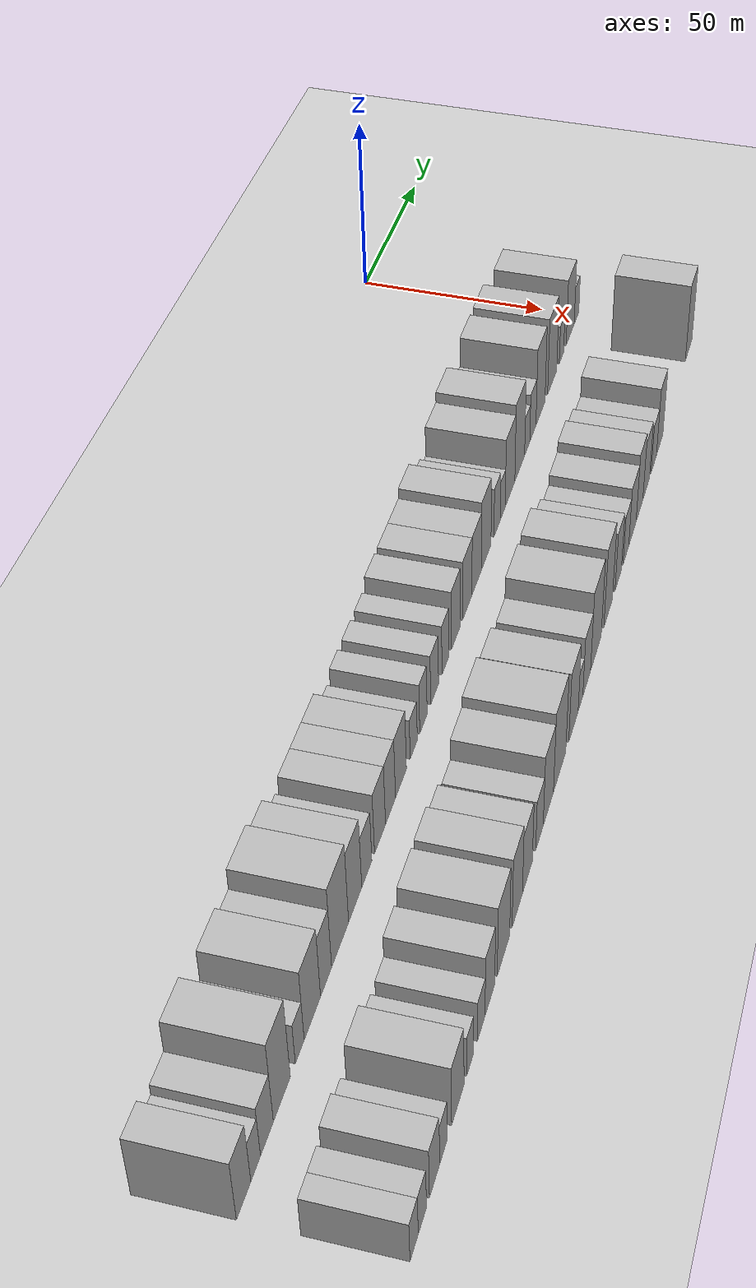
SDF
<sdf version="1.6">
 <world name="default">
  <include><name>ground_plane_1</name><uri>model://HANNAS_ground_plane</uri></include>
  <model name="building_1">
   <static>1</static>
   <pose>50.0000 -278.0419 0 0.000000 0.000000 0.000000</pose>
   <link name="link">
    <pose>0 0 9.00 0 0 0</pose>
    <collision name="collision"><geometry><box><size>20.0000 7.9161 18.0000</size></box></geometry></collision>
    <visual name="visual">
     <cast_shadows>0</cast_shadows>
     <geometry><box><size>20.0000 7.9161 18.0000</size></box></geometry>
     <material>
      <script>
       <uri>model://HANNAS_wall/materials/scripts</uri>
       <uri>model://HANNAS_wall/materials/textures</uri>
       <name>vrc/HANNAS_wall</name>
      </script>
     </material>
    </visual>
   </link>
  </model>
  <model name="building_2">
   <static>1</static>
   <pose>50.0000 -271.3548 0 0.000000 0.000000 0.000000</pose>
   <link name="link">
    <pose>0 0 6.00 0 0 0</pose>
    <collision name="collision"><geometry><box><size>20.0000 5.4581 12.0000</size></box></geometry></collision>
    <visual name="visual">
     <cast_shadows>0</cast_shadows>
     <geometry><box><size>20.0000 5.4581 12.0000</size></box></geometry>
     <material>
      <script>
       <uri>model://HANNAS_wall/materials/scripts</uri>
       <uri>model://HANNAS_wall/materials/textures</uri>
       <name>vrc/HANNAS_wall</name>
      </script>
     </material>
    </visual>
   </link>
  </model>
  <model name="building_3">
   <static>1</static>
   <pose>50.0000 -264.9347 0 0.000000 0.000000 0.000000</pose>
   <link name="link">
    <pose>0 0 7.50 0 0 0</pose>
    <collision name="collision"><geometry><box><size>20.0000 7.3822 15.0000</size></box></geometry></collision>
    <visual name="visual">
     <cast_shadows>0</cast_shadows>
     <geometry><box><size>20.0000 7.3822 15.0000</size></box></geometry>
     <material>
      <script>
       <uri>model://HANNAS_wall/materials/scripts</uri>
       <uri>model://HANNAS_wall/materials/textures</uri>
       <name>vrc/HANNAS_wall</name>
      </script>
     </material>
    </visual>
   </link>
  </model>
  <model name="building_4">
   <static>1</static>
   <pose>50.0000 -256.2046 0 0.000000 0.000000 0.000000</pose>
   <link name="link">
    <pose>0 0 12.00 0 0 0</pose>
    <collision name="collision"><geometry><box><size>20.0000 10.0779 24.0000</size></box></geometry></collision>
    <visual name="visual">
     <cast_shadows>0</cast_shadows>
     <geometry><box><size>20.0000 10.0779 24.0000</size></box></geometry>
     <material>
      <script>
       <uri>model://HANNAS_wall/materials/scripts</uri>
       <uri>model://HANNAS_wall/materials/textures</uri>
       <name>vrc/HANNAS_wall</name>
      </script>
     </material>
    </visual>
   </link>
  </model>
  <model name="building_5">
   <static>1</static>
   <pose>50.0000 -245.4248 0 0.000000 0.000000 0.000000</pose>
   <link name="link">
    <pose>0 0 6.00 0 0 0</pose>
    <collision name="collision"><geometry><box><size>20.0000 5.4817 12.0000</size></box></geometry></collision>
    <visual name="visual">
     <cast_shadows>0</cast_shadows>
     <geometry><box><size>20.0000 5.4817 12.0000</size></box></geometry>
     <material>
      <script>
       <uri>model://HANNAS_wall/materials/scripts</uri>
       <uri>model://HANNAS_wall/materials/textures</uri>
       <name>vrc/HANNAS_wall</name>
      </script>
     </material>
    </visual>
   </link>
  </model>
  <model name="building_6">
   <static>1</static>
   <pose>50.0000 -237.4997 0 0.000000 0.000000 0.000000</pose>
   <link name="link">
    <pose>0 0 10.50 0 0 0</pose>
    <collision name="collision"><geometry><box><size>20.0000 10.3685 21.0000</size></box></geometry></collision>
    <visual name="visual">
     <cast_shadows>0</cast_shadows>
     <geometry><box><size>20.0000 10.3685 21.0000</size></box></geometry>
     <material>
      <script>
       <uri>model://HANNAS_wall/materials/scripts</uri>
       <uri>model://HANNAS_wall/materials/textures</uri>
       <name>vrc/HANNAS_wall</name>
      </script>
     </material>
    </visual>
   </link>
  </model>
  <model name="building_7">
   <static>1</static>
   <pose>50.0000 -228.6989 0 0.000000 0.000000 0.000000</pose>
   <link name="link">
    <pose>0 0 9.00 0 0 0</pose>
    <collision name="collision"><geometry><box><size>20.0000 7.2332 18.0000</size></box></geometry></collision>
    <visual name="visual">
     <cast_shadows>0</cast_shadows>
     <geometry><box><size>20.0000 7.2332 18.0000</size></box></geometry>
     <material>
      <script>
       <uri>model://HANNAS_wall/materials/scripts</uri>
       <uri>model://HANNAS_wall/materials/textures</uri>
       <name>vrc/HANNAS_wall</name>
      </script>
     </material>
    </visual>
   </link>
  </model>
  <model name="building_8">
   <static>1</static>
   <pose>50.0000 -219.3549 0 0.000000 0.000000 0.000000</pose>
   <link name="link">
    <pose>0 0 12.00 0 0 0</pose>
    <collision name="collision"><geometry><box><size>20.0000 11.4548 24.0000</size></box></geometry></collision>
    <visual name="visual">
     <cast_shadows>0</cast_shadows>
     <geometry><box><size>20.0000 11.4548 24.0000</size></box></geometry>
     <material>
      <script>
       <uri>model://HANNAS_wall/materials/scripts</uri>
       <uri>model://HANNAS_wall/materials/textures</uri>
       <name>vrc/HANNAS_wall</name>
      </script>
     </material>
    </visual>
   </link>
  </model>
  <model name="building_9">
   <static>1</static>
   <pose>50.0000 -209.0306 0 0.000000 0.000000 0.000000</pose>
   <link name="link">
    <pose>0 0 10.50 0 0 0</pose>
    <collision name="collision"><geometry><box><size>20.0000 9.1938 21.0000</size></box></geometry></collision>
    <visual name="visual">
     <cast_shadows>0</cast_shadows>
     <geometry><box><size>20.0000 9.1938 21.0000</size></box></geometry>
     <material>
      <script>
       <uri>model://HANNAS_wall/materials/scripts</uri>
       <uri>model://HANNAS_wall/materials/textures</uri>
       <name>vrc/HANNAS_wall</name>
      </script>
     </material>
    </visual>
   </link>
  </model>
  <model name="building_10">
   <static>1</static>
   <pose>50.0000 -200.8286 0 0.000000 0.000000 0.000000</pose>
   <link name="link">
    <pose>0 0 7.50 0 0 0</pose>
    <collision name="collision"><geometry><box><size>20.0000 7.2102 15.0000</size></box></geometry></collision>
    <visual name="visual">
     <cast_shadows>0</cast_shadows>
     <geometry><box><size>20.0000 7.2102 15.0000</size></box></geometry>
     <material>
      <script>
       <uri>model://HANNAS_wall/materials/scripts</uri>
       <uri>model://HANNAS_wall/materials/textures</uri>
       <name>vrc/HANNAS_wall</name>
      </script>
     </material>
    </visual>
   </link>
  </model>
  <model name="building_11">
   <static>1</static>
   <pose>50.0000 -191.1680 0 0.000000 0.000000 0.000000</pose>
   <link name="link">
    <pose>0 0 9.00 0 0 0</pose>
    <collision name="collision"><geometry><box><size>20.0000 8.1109 18.0000</size></box></geometry></collision>
    <visual name="visual">
     <cast_shadows>0</cast_shadows>
     <geometry><box><size>20.0000 8.1109 18.0000</size></box></geometry>
     <material>
      <script>
       <uri>model://HANNAS_wall/materials/scripts</uri>
       <uri>model://HANNAS_wall/materials/textures</uri>
       <name>vrc/HANNAS_wall</name>
      </script>
     </material>
    </visual>
   </link>
  </model>
  <model name="building_12">
   <static>1</static>
   <pose>50.0000 -183.3251 0 0.000000 0.000000 0.000000</pose>
   <link name="link">
    <pose>0 0 9.00 0 0 0</pose>
    <collision name="collision"><geometry><box><size>20.0000 7.5751 18.0000</size></box></geometry></collision>
    <visual name="visual">
     <cast_shadows>0</cast_shadows>
     <geometry><box><size>20.0000 7.5751 18.0000</size></box></geometry>
     <material>
      <script>
       <uri>model://HANNAS_wall/materials/scripts</uri>
       <uri>model://HANNAS_wall/materials/textures</uri>
       <name>vrc/HANNAS_wall</name>
      </script>
     </material>
    </visual>
   </link>
  </model>
  <model name="building_13">
   <static>1</static>
   <pose>50.0000 -175.3021 0 0.000000 0.000000 0.000000</pose>
   <link name="link">
    <pose>0 0 9.00 0 0 0</pose>
    <collision name="collision"><geometry><box><size>20.0000 8.4709 18.0000</size></box></geometry></collision>
    <visual name="visual">
     <cast_shadows>0</cast_shadows>
     <geometry><box><size>20.0000 8.4709 18.0000</size></box></geometry>
     <material>
      <script>
       <uri>model://HANNAS_wall/materials/scripts</uri>
       <uri>model://HANNAS_wall/materials/textures</uri>
       <name>vrc/HANNAS_wall</name>
      </script>
     </material>
    </visual>
   </link>
  </model>
  <model name="building_14">
   <static>1</static>
   <pose>50.0000 -165.2082 0 0.000000 0.000000 0.000000</pose>
   <link name="link">
    <pose>0 0 6.00 0 0 0</pose>
    <collision name="collision"><geometry><box><size>20.0000 5.7168 12.0000</size></box></geometry></collision>
    <visual name="visual">
     <cast_shadows>0</cast_shadows>
     <geometry><box><size>20.0000 5.7168 12.0000</size></box></geometry>
     <material>
      <script>
       <uri>model://HANNAS_wall/materials/scripts</uri>
       <uri>model://HANNAS_wall/materials/textures</uri>
       <name>vrc/HANNAS_wall</name>
      </script>
     </material>
    </visual>
   </link>
  </model>
  <model name="building_15">
   <static>1</static>
   <pose>50.0000 -157.3259 0 0.000000 0.000000 0.000000</pose>
   <link name="link">
    <pose>0 0 7.50 0 0 0</pose>
    <collision name="collision"><geometry><box><size>20.0000 6.0478 15.0000</size></box></geometry></collision>
    <visual name="visual">
     <cast_shadows>0</cast_shadows>
     <geometry><box><size>20.0000 6.0478 15.0000</size></box></geometry>
     <material>
      <script>
       <uri>model://HANNAS_wall/materials/scripts</uri>
       <uri>model://HANNAS_wall/materials/textures</uri>
       <name>vrc/HANNAS_wall</name>
      </script>
     </material>
    </visual>
   </link>
  </model>
  <model name="building_16">
   <static>1</static>
   <pose>50.0000 -148.0049 0 0.000000 0.000000 0.000000</pose>
   <link name="link">
    <pose>0 0 7.50 0 0 0</pose>
    <collision name="collision"><geometry><box><size>20.0000 6.5941 15.0000</size></box></geometry></collision>
    <visual name="visual">
     <cast_shadows>0</cast_shadows>
     <geometry><box><size>20.0000 6.5941 15.0000</size></box></geometry>
     <material>
      <script>
       <uri>model://HANNAS_wall/materials/scripts</uri>
       <uri>model://HANNAS_wall/materials/textures</uri>
       <name>vrc/HANNAS_wall</name>
      </script>
     </material>
    </visual>
   </link>
  </model>
  <model name="building_17">
   <static>1</static>
   <pose>50.0000 -138.6632 0 0.000000 0.000000 0.000000</pose>
   <link name="link">
    <pose>0 0 7.50 0 0 0</pose>
    <collision name="collision"><geometry><box><size>20.0000 6.0894 15.0000</size></box></geometry></collision>
    <visual name="visual">
     <cast_shadows>0</cast_shadows>
     <geometry><box><size>20.0000 6.0894 15.0000</size></box></geometry>
     <material>
      <script>
       <uri>model://HANNAS_wall/materials/scripts</uri>
       <uri>model://HANNAS_wall/materials/textures</uri>
       <name>vrc/HANNAS_wall</name>
      </script>
     </material>
    </visual>
   </link>
  </model>
  <model name="building_18">
   <static>1</static>
   <pose>50.0000 -129.5498 0 0.000000 0.000000 0.000000</pose>
   <link name="link">
    <pose>0 0 9.00 0 0 0</pose>
    <collision name="collision"><geometry><box><size>20.0000 8.1373 18.0000</size></box></geometry></collision>
    <visual name="visual">
     <cast_shadows>0</cast_shadows>
     <geometry><box><size>20.0000 8.1373 18.0000</size></box></geometry>
     <material>
      <script>
       <uri>model://HANNAS_wall/materials/scripts</uri>
       <uri>model://HANNAS_wall/materials/textures</uri>
       <name>vrc/HANNAS_wall</name>
      </script>
     </material>
    </visual>
   </link>
  </model>
  <model name="building_19">
   <static>1</static>
   <pose>50.0000 -119.1275 0 0.000000 0.000000 0.000000</pose>
   <link name="link">
    <pose>0 0 9.00 0 0 0</pose>
    <collision name="collision"><geometry><box><size>20.0000 8.7075 18.0000</size></box></geometry></collision>
    <visual name="visual">
     <cast_shadows>0</cast_shadows>
     <geometry><box><size>20.0000 8.7075 18.0000</size></box></geometry>
     <material>
      <script>
       <uri>model://HANNAS_wall/materials/scripts</uri>
       <uri>model://HANNAS_wall/materials/textures</uri>
       <name>vrc/HANNAS_wall</name>
      </script>
     </material>
    </visual>
   </link>
  </model>
  <model name="building_20">
   <static>1</static>
   <pose>50.0000 -110.3166 0 0.000000 0.000000 0.000000</pose>
   <link name="link">
    <pose>0 0 9.00 0 0 0</pose>
    <collision name="collision"><geometry><box><size>20.0000 8.9142 18.0000</size></box></geometry></collision>
    <visual name="visual">
     <cast_shadows>0</cast_shadows>
     <geometry><box><size>20.0000 8.9142 18.0000</size></box></geometry>
     <material>
      <script>
       <uri>model://HANNAS_wall/materials/scripts</uri>
       <uri>model://HANNAS_wall/materials/textures</uri>
       <name>vrc/HANNAS_wall</name>
      </script>
     </material>
    </visual>
   </link>
  </model>
  <model name="building_21">
   <static>1</static>
   <pose>50.0000 -101.2761 0 0.000000 0.000000 0.000000</pose>
   <link name="link">
    <pose>0 0 10.50 0 0 0</pose>
    <collision name="collision"><geometry><box><size>20.0000 9.1668 21.0000</size></box></geometry></collision>
    <visual name="visual">
     <cast_shadows>0</cast_shadows>
     <geometry><box><size>20.0000 9.1668 21.0000</size></box></geometry>
     <material>
      <script>
       <uri>model://HANNAS_wall/materials/scripts</uri>
       <uri>model://HANNAS_wall/materials/textures</uri>
       <name>vrc/HANNAS_wall</name>
      </script>
     </material>
    </visual>
   </link>
  </model>
  <model name="building_22">
   <static>1</static>
   <pose>50.0000 -90.5518 0 0.000000 0.000000 0.000000</pose>
   <link name="link">
    <pose>0 0 7.50 0 0 0</pose>
    <collision name="collision"><geometry><box><size>20.0000 6.2818 15.0000</size></box></geometry></collision>
    <visual name="visual">
     <cast_shadows>0</cast_shadows>
     <geometry><box><size>20.0000 6.2818 15.0000</size></box></geometry>
     <material>
      <script>
       <uri>model://HANNAS_wall/materials/scripts</uri>
       <uri>model://HANNAS_wall/materials/textures</uri>
       <name>vrc/HANNAS_wall</name>
      </script>
     </material>
    </visual>
   </link>
  </model>
  <model name="building_23">
   <static>1</static>
   <pose>50.0000 -84.8986 0 0.000000 0.000000 0.000000</pose>
   <link name="link">
    <pose>0 0 6.00 0 0 0</pose>
    <collision name="collision"><geometry><box><size>20.0000 5.0246 12.0000</size></box></geometry></collision>
    <visual name="visual">
     <cast_shadows>0</cast_shadows>
     <geometry><box><size>20.0000 5.0246 12.0000</size></box></geometry>
     <material>
      <script>
       <uri>model://HANNAS_wall/materials/scripts</uri>
       <uri>model://HANNAS_wall/materials/textures</uri>
       <name>vrc/HANNAS_wall</name>
      </script>
     </material>
    </visual>
   </link>
  </model>
  <model name="building_24">
   <static>1</static>
   <pose>50.0000 -77.4337 0 0.000000 0.000000 0.000000</pose>
   <link name="link">
    <pose>0 0 10.50 0 0 0</pose>
    <collision name="collision"><geometry><box><size>20.0000 9.9053 21.0000</size></box></geometry></collision>
    <visual name="visual">
     <cast_shadows>0</cast_shadows>
     <geometry><box><size>20.0000 9.9053 21.0000</size></box></geometry>
     <material>
      <script>
       <uri>model://HANNAS_wall/materials/scripts</uri>
       <uri>model://HANNAS_wall/materials/textures</uri>
       <name>vrc/HANNAS_wall</name>
      </script>
     </material>
    </visual>
   </link>
  </model>
  <model name="building_25">
   <static>1</static>
   <pose>50.0000 -67.3081 0 0.000000 0.000000 0.000000</pose>
   <link name="link">
    <pose>0 0 12.00 0 0 0</pose>
    <collision name="collision"><geometry><box><size>20.0000 10.3458 24.0000</size></box></geometry></collision>
    <visual name="visual">
     <cast_shadows>0</cast_shadows>
     <geometry><box><size>20.0000 10.3458 24.0000</size></box></geometry>
     <material>
      <script>
       <uri>model://HANNAS_wall/materials/scripts</uri>
       <uri>model://HANNAS_wall/materials/textures</uri>
       <name>vrc/HANNAS_wall</name>
      </script>
     </material>
    </visual>
   </link>
  </model>
  <model name="building_26">
   <static>1</static>
   <pose>50.0000 -59.3123 0 0.000000 0.000000 0.000000</pose>
   <link name="link">
    <pose>0 0 6.00 0 0 0</pose>
    <collision name="collision"><geometry><box><size>20.0000 5.6458 12.0000</size></box></geometry></collision>
    <visual name="visual">
     <cast_shadows>0</cast_shadows>
     <geometry><box><size>20.0000 5.6458 12.0000</size></box></geometry>
     <material>
      <script>
       <uri>model://HANNAS_wall/materials/scripts</uri>
       <uri>model://HANNAS_wall/materials/textures</uri>
       <name>vrc/HANNAS_wall</name>
      </script>
     </material>
    </visual>
   </link>
  </model>
  <model name="building_27">
   <static>1</static>
   <pose>50.0000 -53.0822 0 0.000000 0.000000 0.000000</pose>
   <link name="link">
    <pose>0 0 7.50 0 0 0</pose>
    <collision name="collision"><geometry><box><size>20.0000 6.8145 15.0000</size></box></geometry></collision>
    <visual name="visual">
     <cast_shadows>0</cast_shadows>
     <geometry><box><size>20.0000 6.8145 15.0000</size></box></geometry>
     <material>
      <script>
       <uri>model://HANNAS_wall/materials/scripts</uri>
       <uri>model://HANNAS_wall/materials/textures</uri>
       <name>vrc/HANNAS_wall</name>
      </script>
     </material>
    </visual>
   </link>
  </model>
  <model name="building_28">
   <static>1</static>
   <pose>50.0000 -44.5642 0 0.000000 0.000000 0.000000</pose>
   <link name="link">
    <pose>0 0 12.00 0 0 0</pose>
    <collision name="collision"><geometry><box><size>20.0000 10.2215 24.0000</size></box></geometry></collision>
    <visual name="visual">
     <cast_shadows>0</cast_shadows>
     <geometry><box><size>20.0000 10.2215 24.0000</size></box></geometry>
     <material>
      <script>
       <uri>model://HANNAS_wall/materials/scripts</uri>
       <uri>model://HANNAS_wall/materials/textures</uri>
       <name>vrc/HANNAS_wall</name>
      </script>
     </material>
    </visual>
   </link>
  </model>
  <model name="building_29">
   <static>1</static>
   <pose>50.0000 -31.1216 0 0.000000 0.000000 0.000000</pose>
   <link name="link">
    <pose>0 0 12.00 0 0 0</pose>
    <collision name="collision"><geometry><box><size>20.0000 10.6637 24.0000</size></box></geometry></collision>
    <visual name="visual">
     <cast_shadows>0</cast_shadows>
     <geometry><box><size>20.0000 10.6637 24.0000</size></box></geometry>
     <material>
      <script>
       <uri>model://HANNAS_wall/materials/scripts</uri>
       <uri>model://HANNAS_wall/materials/textures</uri>
       <name>vrc/HANNAS_wall</name>
      </script>
     </material>
    </visual>
   </link>
  </model>
  <model name="building_30">
   <static>1</static>
   <pose>50.0000 -20.1444 0 0.000000 0.000000 0.000000</pose>
   <link name="link">
    <pose>0 0 6.00 0 0 0</pose>
    <collision name="collision"><geometry><box><size>20.0000 5.2907 12.0000</size></box></geometry></collision>
    <visual name="visual">
     <cast_shadows>0</cast_shadows>
     <geometry><box><size>20.0000 5.2907 12.0000</size></box></geometry>
     <material>
      <script>
       <uri>model://HANNAS_wall/materials/scripts</uri>
       <uri>model://HANNAS_wall/materials/textures</uri>
       <name>vrc/HANNAS_wall</name>
      </script>
     </material>
    </visual>
   </link>
  </model>
  <model name="building_31">
   <static>1</static>
   <pose>50.0000 -9.5176 0 0.000000 0.000000 0.000000</pose>
   <link name="link">
    <pose>0 0 10.50 0 0 0</pose>
    <collision name="collision"><geometry><box><size>20.0000 9.9630 21.0000</size></box></geometry></collision>
    <visual name="visual">
     <cast_shadows>0</cast_shadows>
     <geometry><box><size>20.0000 9.9630 21.0000</size></box></geometry>
     <material>
      <script>
       <uri>model://HANNAS_wall/materials/scripts</uri>
       <uri>model://HANNAS_wall/materials/textures</uri>
       <name>vrc/HANNAS_wall</name>
      </script>
     </material>
    </visual>
   </link>
  </model>
  <model name="building_32">
   <static>1</static>
   <pose>50.0000 -1.6180 0 0.000000 0.000000 0.000000</pose>
   <link name="link">
    <pose>0 0 6.00 0 0 0</pose>
    <collision name="collision"><geometry><box><size>20.0000 5.8362 12.0000</size></box></geometry></collision>
    <visual name="visual">
     <cast_shadows>0</cast_shadows>
     <geometry><box><size>20.0000 5.8362 12.0000</size></box></geometry>
     <material>
      <script>
       <uri>model://HANNAS_wall/materials/scripts</uri>
       <uri>model://HANNAS_wall/materials/textures</uri>
       <name>vrc/HANNAS_wall</name>
      </script>
     </material>
    </visual>
   </link>
  </model>
  <model name="building_64">
   <static>1</static>
   <pose>82.0000 -279.3072 0 0.000000 0.000000 0.000000</pose>
   <link name="link">
    <pose>0 0 6.00 0 0 0</pose>
    <collision name="collision"><geometry><box><size>20.0000 5.3857 12.0000</size></box></geometry></collision>
    <visual name="visual">
     <cast_shadows>0</cast_shadows>
     <geometry><box><size>20.0000 5.3857 12.0000</size></box></geometry>
     <material>
      <script>
       <uri>model://HANNAS_wall/materials/scripts</uri>
       <uri>model://HANNAS_wall/materials/textures</uri>
       <name>vrc/HANNAS_wall</name>
      </script>
     </material>
    </visual>
   </link>
  </model>
  <model name="building_65">
   <static>1</static>
   <pose>82.0000 -273.8731 0 0.000000 0.000000 0.000000</pose>
   <link name="link">
    <pose>0 0 6.00 0 0 0</pose>
    <collision name="collision"><geometry><box><size>20.0000 5.4824 12.0000</size></box></geometry></collision>
    <visual name="visual">
     <cast_shadows>0</cast_shadows>
     <geometry><box><size>20.0000 5.4824 12.0000</size></box></geometry>
     <material>
      <script>
       <uri>model://HANNAS_wall/materials/scripts</uri>
       <uri>model://HANNAS_wall/materials/textures</uri>
       <name>vrc/HANNAS_wall</name>
      </script>
     </material>
    </visual>
   </link>
  </model>
  <model name="building_66">
   <static>1</static>
   <pose>82.0000 -265.6224 0 0.000000 0.000000 0.000000</pose>
   <link name="link">
    <pose>0 0 7.50 0 0 0</pose>
    <collision name="collision"><geometry><box><size>20.0000 7.0191 15.0000</size></box></geometry></collision>
    <visual name="visual">
     <cast_shadows>0</cast_shadows>
     <geometry><box><size>20.0000 7.0191 15.0000</size></box></geometry>
     <material>
      <script>
       <uri>model://HANNAS_wall/materials/scripts</uri>
       <uri>model://HANNAS_wall/materials/textures</uri>
       <name>vrc/HANNAS_wall</name>
      </script>
     </material>
    </visual>
   </link>
  </model>
  <model name="building_67">
   <static>1</static>
   <pose>82.0000 -259.4065 0 0.000000 0.000000 0.000000</pose>
   <link name="link">
    <pose>0 0 6.00 0 0 0</pose>
    <collision name="collision"><geometry><box><size>20.0000 5.4126 12.0000</size></box></geometry></collision>
    <visual name="visual">
     <cast_shadows>0</cast_shadows>
     <geometry><box><size>20.0000 5.4126 12.0000</size></box></geometry>
     <material>
      <script>
       <uri>model://HANNAS_wall/materials/scripts</uri>
       <uri>model://HANNAS_wall/materials/textures</uri>
       <name>vrc/HANNAS_wall</name>
      </script>
     </material>
    </visual>
   </link>
  </model>
  <model name="building_68">
   <static>1</static>
   <pose>82.0000 -249.2070 0 0.000000 0.000000 0.000000</pose>
   <link name="link">
    <pose>0 0 9.00 0 0 0</pose>
    <collision name="collision"><geometry><box><size>20.0000 8.9863 18.0000</size></box></geometry></collision>
    <visual name="visual">
     <cast_shadows>0</cast_shadows>
     <geometry><box><size>20.0000 8.9863 18.0000</size></box></geometry>
     <material>
      <script>
       <uri>model://HANNAS_wall/materials/scripts</uri>
       <uri>model://HANNAS_wall/materials/textures</uri>
       <name>vrc/HANNAS_wall</name>
      </script>
     </material>
    </visual>
   </link>
  </model>
  <model name="building_69">
   <static>1</static>
   <pose>82.0000 -240.1617 0 0.000000 0.000000 0.000000</pose>
   <link name="link">
    <pose>0 0 6.00 0 0 0</pose>
    <collision name="collision"><geometry><box><size>20.0000 5.1044 12.0000</size></box></geometry></collision>
    <visual name="visual">
     <cast_shadows>0</cast_shadows>
     <geometry><box><size>20.0000 5.1044 12.0000</size></box></geometry>
     <material>
      <script>
       <uri>model://HANNAS_wall/materials/scripts</uri>
       <uri>model://HANNAS_wall/materials/textures</uri>
       <name>vrc/HANNAS_wall</name>
      </script>
     </material>
    </visual>
   </link>
  </model>
  <model name="building_70">
   <static>1</static>
   <pose>82.0000 -231.6276 0 0.000000 0.000000 0.000000</pose>
   <link name="link">
    <pose>0 0 6.00 0 0 0</pose>
    <collision name="collision"><geometry><box><size>20.0000 5.9638 12.0000</size></box></geometry></collision>
    <visual name="visual">
     <cast_shadows>0</cast_shadows>
     <geometry><box><size>20.0000 5.9638 12.0000</size></box></geometry>
     <material>
      <script>
       <uri>model://HANNAS_wall/materials/scripts</uri>
       <uri>model://HANNAS_wall/materials/textures</uri>
       <name>vrc/HANNAS_wall</name>
      </script>
     </material>
    </visual>
   </link>
  </model>
  <model name="building_71">
   <static>1</static>
   <pose>82.0000 -224.7965 0 0.000000 0.000000 0.000000</pose>
   <link name="link">
    <pose>0 0 9.00 0 0 0</pose>
    <collision name="collision"><geometry><box><size>20.0000 7.6984 18.0000</size></box></geometry></collision>
    <visual name="visual">
     <cast_shadows>0</cast_shadows>
     <geometry><box><size>20.0000 7.6984 18.0000</size></box></geometry>
     <material>
      <script>
       <uri>model://HANNAS_wall/materials/scripts</uri>
       <uri>model://HANNAS_wall/materials/textures</uri>
       <name>vrc/HANNAS_wall</name>
      </script>
     </material>
    </visual>
   </link>
  </model>
  <model name="building_72">
   <static>1</static>
   <pose>82.0000 -213.8456 0 0.000000 0.000000 0.000000</pose>
   <link name="link">
    <pose>0 0 10.50 0 0 0</pose>
    <collision name="collision"><geometry><box><size>20.0000 10.2033 21.0000</size></box></geometry></collision>
    <visual name="visual">
     <cast_shadows>0</cast_shadows>
     <geometry><box><size>20.0000 10.2033 21.0000</size></box></geometry>
     <material>
      <script>
       <uri>model://HANNAS_wall/materials/scripts</uri>
       <uri>model://HANNAS_wall/materials/textures</uri>
       <name>vrc/HANNAS_wall</name>
      </script>
     </material>
    </visual>
   </link>
  </model>
  <model name="building_73">
   <static>1</static>
   <pose>82.0000 -202.2812 0 0.000000 0.000000 0.000000</pose>
   <link name="link">
    <pose>0 0 10.50 0 0 0</pose>
    <collision name="collision"><geometry><box><size>20.0000 8.9257 21.0000</size></box></geometry></collision>
    <visual name="visual">
     <cast_shadows>0</cast_shadows>
     <geometry><box><size>20.0000 8.9257 21.0000</size></box></geometry>
     <material>
      <script>
       <uri>model://HANNAS_wall/materials/scripts</uri>
       <uri>model://HANNAS_wall/materials/textures</uri>
       <name>vrc/HANNAS_wall</name>
      </script>
     </material>
    </visual>
   </link>
  </model>
  <model name="building_74">
   <static>1</static>
   <pose>82.0000 -193.4574 0 0.000000 0.000000 0.000000</pose>
   <link name="link">
    <pose>0 0 9.00 0 0 0</pose>
    <collision name="collision"><geometry><box><size>20.0000 8.7218 18.0000</size></box></geometry></collision>
    <visual name="visual">
     <cast_shadows>0</cast_shadows>
     <geometry><box><size>20.0000 8.7218 18.0000</size></box></geometry>
     <material>
      <script>
       <uri>model://HANNAS_wall/materials/scripts</uri>
       <uri>model://HANNAS_wall/materials/textures</uri>
       <name>vrc/HANNAS_wall</name>
      </script>
     </material>
    </visual>
   </link>
  </model>
  <model name="building_75">
   <static>1</static>
   <pose>82.0000 -182.6572 0 0.000000 0.000000 0.000000</pose>
   <link name="link">
    <pose>0 0 7.50 0 0 0</pose>
    <collision name="collision"><geometry><box><size>20.0000 6.8787 15.0000</size></box></geometry></collision>
    <visual name="visual">
     <cast_shadows>0</cast_shadows>
     <geometry><box><size>20.0000 6.8787 15.0000</size></box></geometry>
     <material>
      <script>
       <uri>model://HANNAS_wall/materials/scripts</uri>
       <uri>model://HANNAS_wall/materials/textures</uri>
       <name>vrc/HANNAS_wall</name>
      </script>
     </material>
    </visual>
   </link>
  </model>
  <model name="building_76">
   <static>1</static>
   <pose>82.0000 -174.4313 0 0.000000 0.000000 0.000000</pose>
   <link name="link">
    <pose>0 0 10.50 0 0 0</pose>
    <collision name="collision"><geometry><box><size>20.0000 9.5731 21.0000</size></box></geometry></collision>
    <visual name="visual">
     <cast_shadows>0</cast_shadows>
     <geometry><box><size>20.0000 9.5731 21.0000</size></box></geometry>
     <material>
      <script>
       <uri>model://HANNAS_wall/materials/scripts</uri>
       <uri>model://HANNAS_wall/materials/textures</uri>
       <name>vrc/HANNAS_wall</name>
      </script>
     </material>
    </visual>
   </link>
  </model>
  <model name="building_77">
   <static>1</static>
   <pose>82.0000 -163.6680 0 0.000000 0.000000 0.000000</pose>
   <link name="link">
    <pose>0 0 12.00 0 0 0</pose>
    <collision name="collision"><geometry><box><size>20.0000 11.9535 24.0000</size></box></geometry></collision>
    <visual name="visual">
     <cast_shadows>0</cast_shadows>
     <geometry><box><size>20.0000 11.9535 24.0000</size></box></geometry>
     <material>
      <script>
       <uri>model://HANNAS_wall/materials/scripts</uri>
       <uri>model://HANNAS_wall/materials/textures</uri>
       <name>vrc/HANNAS_wall</name>
      </script>
     </material>
    </visual>
   </link>
  </model>
  <model name="building_78">
   <static>1</static>
   <pose>82.0000 -149.9595 0 0.000000 0.000000 0.000000</pose>
   <link name="link">
    <pose>0 0 10.50 0 0 0</pose>
    <collision name="collision"><geometry><box><size>20.0000 9.4634 21.0000</size></box></geometry></collision>
    <visual name="visual">
     <cast_shadows>0</cast_shadows>
     <geometry><box><size>20.0000 9.4634 21.0000</size></box></geometry>
     <material>
      <script>
       <uri>model://HANNAS_wall/materials/scripts</uri>
       <uri>model://HANNAS_wall/materials/textures</uri>
       <name>vrc/HANNAS_wall</name>
      </script>
     </material>
    </visual>
   </link>
  </model>
  <model name="building_79">
   <static>1</static>
   <pose>82.0000 -142.8215 0 0.000000 0.000000 0.000000</pose>
   <link name="link">
    <pose>0 0 6.00 0 0 0</pose>
    <collision name="collision"><geometry><box><size>20.0000 4.8126 12.0000</size></box></geometry></collision>
    <visual name="visual">
     <cast_shadows>0</cast_shadows>
     <geometry><box><size>20.0000 4.8126 12.0000</size></box></geometry>
     <material>
      <script>
       <uri>model://HANNAS_wall/materials/scripts</uri>
       <uri>model://HANNAS_wall/materials/textures</uri>
       <name>vrc/HANNAS_wall</name>
      </script>
     </material>
    </visual>
   </link>
  </model>
  <model name="building_80">
   <static>1</static>
   <pose>82.0000 -136.3421 0 0.000000 0.000000 0.000000</pose>
   <link name="link">
    <pose>0 0 9.00 0 0 0</pose>
    <collision name="collision"><geometry><box><size>20.0000 8.1463 18.0000</size></box></geometry></collision>
    <visual name="visual">
     <cast_shadows>0</cast_shadows>
     <geometry><box><size>20.0000 8.1463 18.0000</size></box></geometry>
     <material>
      <script>
       <uri>model://HANNAS_wall/materials/scripts</uri>
       <uri>model://HANNAS_wall/materials/textures</uri>
       <name>vrc/HANNAS_wall</name>
      </script>
     </material>
    </visual>
   </link>
  </model>
  <model name="building_81">
   <static>1</static>
   <pose>82.0000 -126.5177 0 0.000000 0.000000 0.000000</pose>
   <link name="link">
    <pose>0 0 12.00 0 0 0</pose>
    <collision name="collision"><geometry><box><size>20.0000 11.5023 24.0000</size></box></geometry></collision>
    <visual name="visual">
     <cast_shadows>0</cast_shadows>
     <geometry><box><size>20.0000 11.5023 24.0000</size></box></geometry>
     <material>
      <script>
       <uri>model://HANNAS_wall/materials/scripts</uri>
       <uri>model://HANNAS_wall/materials/textures</uri>
       <name>vrc/HANNAS_wall</name>
      </script>
     </material>
    </visual>
   </link>
  </model>
  <model name="building_82">
   <static>1</static>
   <pose>82.0000 -112.9433 0 0.000000 0.000000 0.000000</pose>
   <link name="link">
    <pose>0 0 12.00 0 0 0</pose>
    <collision name="collision"><geometry><box><size>20.0000 9.6467 24.0000</size></box></geometry></collision>
    <visual name="visual">
     <cast_shadows>0</cast_shadows>
     <geometry><box><size>20.0000 9.6467 24.0000</size></box></geometry>
     <material>
      <script>
       <uri>model://HANNAS_wall/materials/scripts</uri>
       <uri>model://HANNAS_wall/materials/textures</uri>
       <name>vrc/HANNAS_wall</name>
      </script>
     </material>
    </visual>
   </link>
  </model>
  <model name="building_83">
   <static>1</static>
   <pose>82.0000 -101.4091 0 0.000000 0.000000 0.000000</pose>
   <link name="link">
    <pose>0 0 9.00 0 0 0</pose>
    <collision name="collision"><geometry><box><size>20.0000 7.4216 18.0000</size></box></geometry></collision>
    <visual name="visual">
     <cast_shadows>0</cast_shadows>
     <geometry><box><size>20.0000 7.4216 18.0000</size></box></geometry>
     <material>
      <script>
       <uri>model://HANNAS_wall/materials/scripts</uri>
       <uri>model://HANNAS_wall/materials/textures</uri>
       <name>vrc/HANNAS_wall</name>
      </script>
     </material>
    </visual>
   </link>
  </model>
  <model name="building_84">
   <static>1</static>
   <pose>82.0000 -92.3058 0 0.000000 0.000000 0.000000</pose>
   <link name="link">
    <pose>0 0 7.50 0 0 0</pose>
    <collision name="collision"><geometry><box><size>20.0000 6.7851 15.0000</size></box></geometry></collision>
    <visual name="visual">
     <cast_shadows>0</cast_shadows>
     <geometry><box><size>20.0000 6.7851 15.0000</size></box></geometry>
     <material>
      <script>
       <uri>model://HANNAS_wall/materials/scripts</uri>
       <uri>model://HANNAS_wall/materials/textures</uri>
       <name>vrc/HANNAS_wall</name>
      </script>
     </material>
    </visual>
   </link>
  </model>
  <model name="building_85">
   <static>1</static>
   <pose>82.0000 -84.4193 0 0.000000 0.000000 0.000000</pose>
   <link name="link">
    <pose>0 0 9.00 0 0 0</pose>
    <collision name="collision"><geometry><box><size>20.0000 8.9878 18.0000</size></box></geometry></collision>
    <visual name="visual">
     <cast_shadows>0</cast_shadows>
     <geometry><box><size>20.0000 8.9878 18.0000</size></box></geometry>
     <material>
      <script>
       <uri>model://HANNAS_wall/materials/scripts</uri>
       <uri>model://HANNAS_wall/materials/textures</uri>
       <name>vrc/HANNAS_wall</name>
      </script>
     </material>
    </visual>
   </link>
  </model>
  <model name="building_86">
   <static>1</static>
   <pose>82.0000 -75.6813 0 0.000000 0.000000 0.000000</pose>
   <link name="link">
    <pose>0 0 10.50 0 0 0</pose>
    <collision name="collision"><geometry><box><size>20.0000 8.4882 21.0000</size></box></geometry></collision>
    <visual name="visual">
     <cast_shadows>0</cast_shadows>
     <geometry><box><size>20.0000 8.4882 21.0000</size></box></geometry>
     <material>
      <script>
       <uri>model://HANNAS_wall/materials/scripts</uri>
       <uri>model://HANNAS_wall/materials/textures</uri>
       <name>vrc/HANNAS_wall</name>
      </script>
     </material>
    </visual>
   </link>
  </model>
  <model name="building_87">
   <static>1</static>
   <pose>82.0000 -67.1716 0 0.000000 0.000000 0.000000</pose>
   <link name="link">
    <pose>0 0 9.00 0 0 0</pose>
    <collision name="collision"><geometry><box><size>20.0000 8.5313 18.0000</size></box></geometry></collision>
    <visual name="visual">
     <cast_shadows>0</cast_shadows>
     <geometry><box><size>20.0000 8.5313 18.0000</size></box></geometry>
     <material>
      <script>
       <uri>model://HANNAS_wall/materials/scripts</uri>
       <uri>model://HANNAS_wall/materials/textures</uri>
       <name>vrc/HANNAS_wall</name>
      </script>
     </material>
    </visual>
   </link>
  </model>
  <model name="building_88">
   <static>1</static>
   <pose>82.0000 -57.3082 0 0.000000 0.000000 0.000000</pose>
   <link name="link">
    <pose>0 0 7.50 0 0 0</pose>
    <collision name="collision"><geometry><box><size>20.0000 7.1954 15.0000</size></box></geometry></collision>
    <visual name="visual">
     <cast_shadows>0</cast_shadows>
     <geometry><box><size>20.0000 7.1954 15.0000</size></box></geometry>
     <material>
      <script>
       <uri>model://HANNAS_wall/materials/scripts</uri>
       <uri>model://HANNAS_wall/materials/textures</uri>
       <name>vrc/HANNAS_wall</name>
      </script>
     </material>
    </visual>
   </link>
  </model>
  <model name="building_89">
   <static>1</static>
   <pose>82.0000 -49.3834 0 0.000000 0.000000 0.000000</pose>
   <link name="link">
    <pose>0 0 10.50 0 0 0</pose>
    <collision name="collision"><geometry><box><size>20.0000 8.6541 21.0000</size></box></geometry></collision>
    <visual name="visual">
     <cast_shadows>0</cast_shadows>
     <geometry><box><size>20.0000 8.6541 21.0000</size></box></geometry>
     <material>
      <script>
       <uri>model://HANNAS_wall/materials/scripts</uri>
       <uri>model://HANNAS_wall/materials/textures</uri>
       <name>vrc/HANNAS_wall</name>
      </script>
     </material>
    </visual>
   </link>
  </model>
  <model name="building_90">
   <static>1</static>
   <pose>82.0000 -8.3676 0 0.000000 0.000000 0.000000</pose>
   <link name="link">
    <pose>0 0 12.00 0 0 0</pose>
    <collision name="collision"><geometry><box><size>20.0000 9.7925 24.0000</size></box></geometry></collision>
    <visual name="visual">
     <cast_shadows>0</cast_shadows>
     <geometry><box><size>20.0000 9.7925 24.0000</size></box></geometry>
     <material>
      <script>
       <uri>model://HANNAS_wall/materials/scripts</uri>
       <uri>model://HANNAS_wall/materials/textures</uri>
       <name>vrc/HANNAS_wall</name>
      </script>
     </material>
    </visual>
   </link>
  </model>
 </world>
</sdf>
